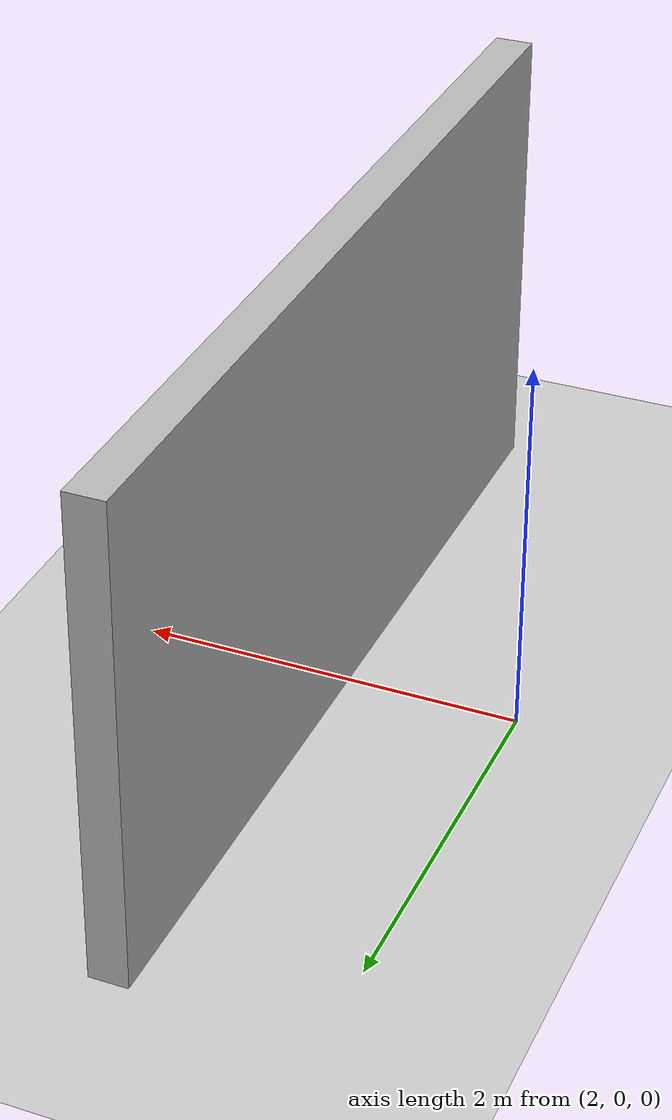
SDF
<?xml version="1.0" ?>
<sdf version="1.8">
  <world name="dynamic_projector_world">
    <physics name='1ms' type='ignored'>
      <max_step_size>0.001</max_step_size>
      <real_time_factor>1</real_time_factor>
      <real_time_update_rate>1000</real_time_update_rate>
    </physics>
    <plugin name='gz::sim::systems::Physics' filename='gz-sim-physics-system'/>
    <plugin name='gz::sim::systems::UserCommands' filename='gz-sim-user-commands-system'/>
    <plugin name='gz::sim::systems::SceneBroadcaster' filename='gz-sim-scene-broadcaster-system'/>
    <plugin name='gz::sim::systems::Contact' filename='gz-sim-contact-system'/>
    <plugin name='gz::sim::systems::Sensors' filename='gz-sim-sensors-system'/>
    <gravity>0 0 -9.8000000000000007</gravity>
    <scene>
      <grid>false</grid>
      <ambient>0.1 0.1 0.1 1.0</ambient>
      <background>0.1 0.1 0.1 1.0</background>
      <shadows>false</shadows>
    </scene>

    <include>
      <uri>https://fuel.gazebosim.org/1.0/OpenRobotics/models/Ground Plane</uri>
    </include>

    <model name="wall">
      <static>true</static>
      <link name="link">
        <visual name="visual">
          <geometry><box><size>5 0.2 2.5</size></box></geometry>
        </visual>
      </link>
    <pose>3 0 1.25 0 0 1.5708</pose>
    </model>

  </world>
</sdf>
